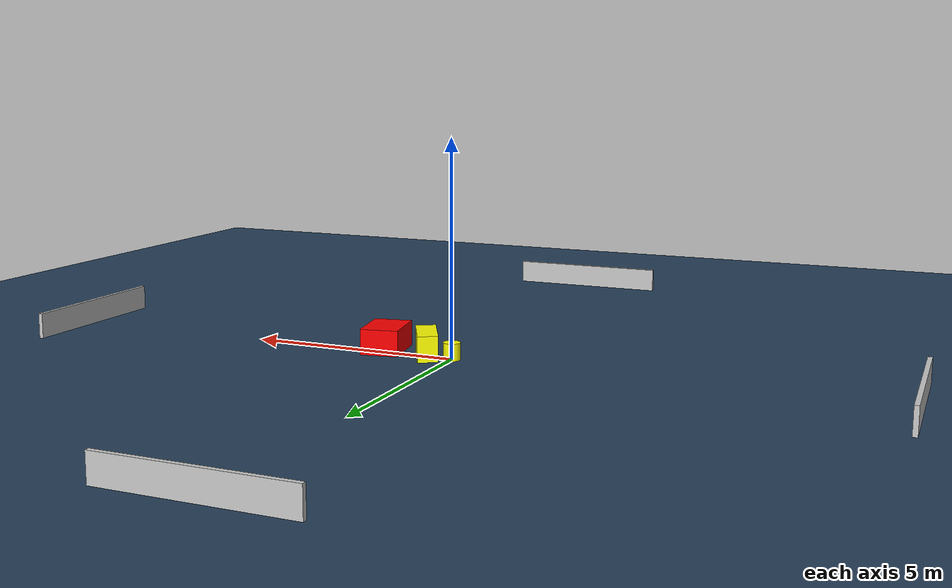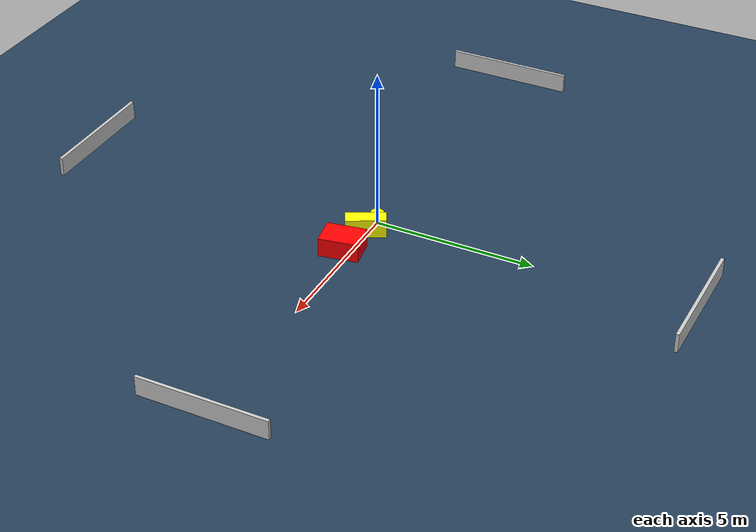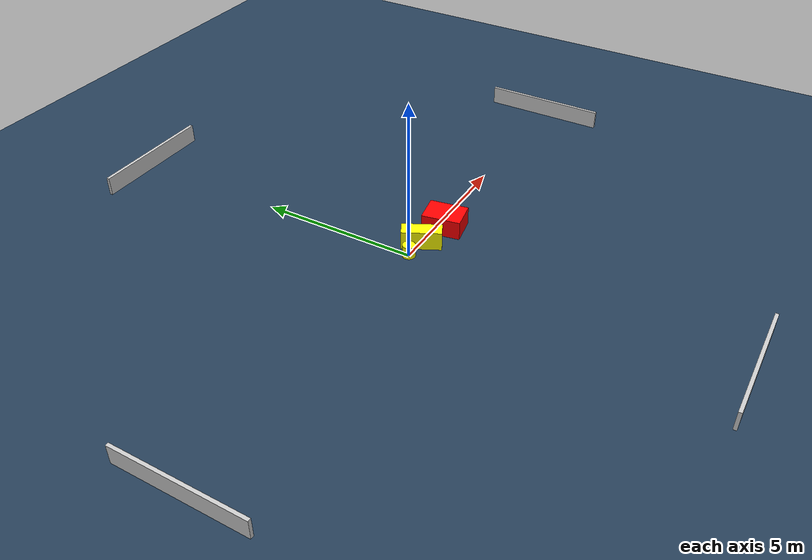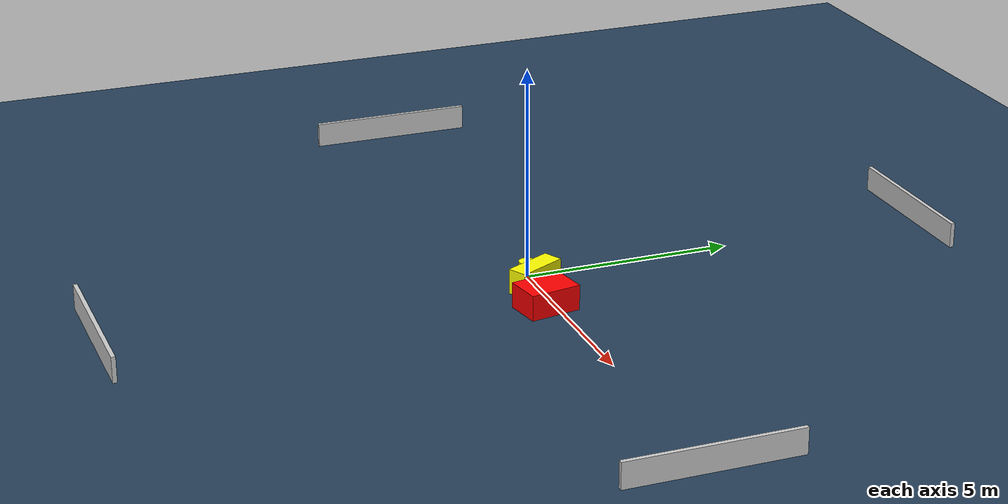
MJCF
<?xml version="1.0" ?>
<mujoco model="generated_environment">
  <option timestep="0.01" integrator="RK4" cone="elliptic"/>
  <default>
    <geom density="1"/>
  </default>
  <asset>
    <texture builtin="gradient" height="3072" name="skybox" rgb1="0.3 0.5 0.7" rgb2="0 0 0" type="skybox" width="512"/>
    <texture builtin="checker" height="300" name="groundplane" rgb1="0.2 0.3 0.4" rgb2="0.1 0.2 0.3" type="2d" width="300"/>
    <material name="groundplane" reflectance="0.2" texrepeat="5 5" texture="groundplane"/>
  </asset>
  <worldbody>
    <light dir="0 0 -1" directional="true" pos="0 0 1.5"/>
    <geom condim="3" friction="0.5 0.005 0.001" material="groundplane" name="floor" pos="0 0 0" size="0 0 0.05" type="plane"/>
    <body name="walls">
      <geom name="wall_1" condim="4" pos="-10.0 0.0 0.3" rgba="0.800000011920929 0.800000011920929 0.800000011920929 1.0" size="0.05 2.0 0.3" type="box"/>
      <geom name="wall_2" condim="4" pos="10.0 0.0 0.3" rgba="0.800000011920929 0.800000011920929 0.800000011920929 1.0" size="0.05 2.0 0.3" type="box"/>
      <geom name="wall_3" condim="4" pos="0.0 -10.0 0.3" rgba="0.800000011920929 0.800000011920929 0.800000011920929 1.0" size="2.0 0.05 0.3" type="box"/>
      <geom name="wall_4" condim="4" pos="0.0 10.0 0.3" rgba="0.800000011920929 0.800000011920929 0.800000011920929 1.0" size="2.0 0.05 0.3" type="box"/>
    </body>
    <body name="robot">
      <joint name="joint_x" type="slide" pos="0 0 0" axis="1 0 0"/>
      <joint name="joint_y" type="slide" pos="0 0 0" axis="0 1 0"/>
      <geom name="robot" type="cylinder" pos="0.0 0.0 0.2" size="0.2 0.2 0.0" mass="5.0" friction="1.0 0.005 0.0001" condim="4" rgba="1.0 1.0 0.0 1.0"/>
    </body>
    <body name="obstacle_1_movable">
      <geom name="obstacle_1_movable" condim="4" pos="0.6497022239966581 -0.06112450675009551 0.3" euler="0 0 116.98665761669851" friction="0.0 0.005 0.001" rgba="1.0 1.0 0.0 1.0" size="0.6136738772123651 0.236493955043507 0.3" type="box" mass="0.1"/>
      <joint type="free"/>
    </body>
    <body name="obstacle_2_static">
      <geom name="obstacle_2_static" condim="4" pos="1.7719986102735232 -0.245924864910409 0.3" euler="0 0 9.973496631904029" friction="0.0 0.005 0.001" rgba="1.0 0.0 0.0 1.0" size="0.4456735580385953 0.607930661414586 0.3" type="box"/>
    </body>
  </worldbody>
  <actuator>
    <motor name="actuator_x" joint="joint_x" gear="1" ctrlrange="-1 1"/>
    <motor name="actuator_y" joint="joint_y" gear="1" ctrlrange="-1 1"/>
  </actuator>
</mujoco>
